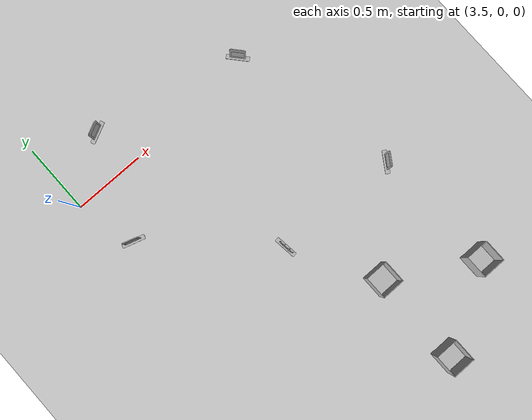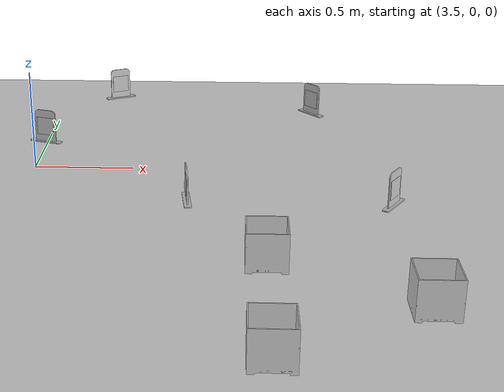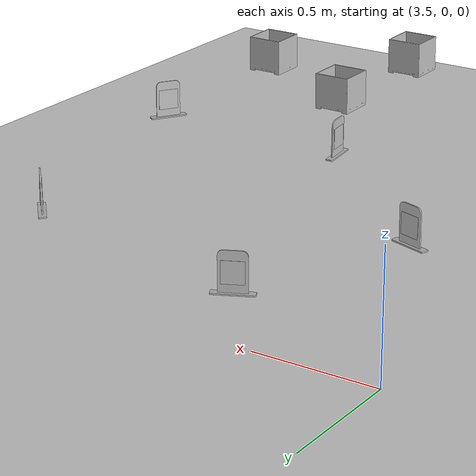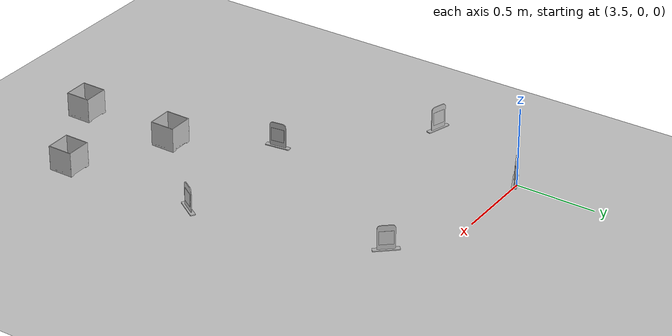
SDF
<sdf version="1.7">
 <world name="trc2k25_arena">
  <model name="ground_plane">
   <static>1</static>
   <link name="link">
    <collision name="collision">
     <geometry><plane><normal>0 0 1</normal><size>100 100</size></plane></geometry>
     <surface><friction><ode><mu>100</mu><mu2>50</mu2></ode></friction></surface>
    </collision>
    <visual name="visual">
     <cast_shadows>0</cast_shadows>
     <geometry><plane><normal>0 0 1</normal><size>100 100</size></plane></geometry>
     <material>
      <script><uri>file://media/materials/scripts/gazebo.material</uri><name>Gazebo/Grey</name></script>
     </material>
    </visual>
   </link>
  </model>
  <model name="pancarte_qr_code_erevan">
   <pose>5.13998 -1.1034 0.345 0 -0 0.99254</pose>
   <model name="pancarte">
    <static>1</static>
    <link name="link">
     <collision name="collision">
      <pose>0 0.075 0 0 -0 0</pose>
      <geometry><box><size>0.15 0.15 0.03</size></box></geometry>
     </collision>
     <visual name="visual">
      <geometry>
       <mesh><scale>0.001 0.001 0.001</scale><uri>model://pancarte/meshes/PANCARTE_QR.stl</uri></mesh>
      </geometry>
     </visual>
    </link>
    <pose>8.8e-05 0.001115 -0.037644 1.55978 -0 0</pose>
   </model>
   <model name="qr_code_zone1Erevan">
    <static>1</static>
    <link name="qr_code_zone1Erevan_link">
     <pose>0 0 0.001 0 -0 1.5708</pose>
     <visual name="visual_qr_code_zone1Erevan">
      <cast_shadows>0</cast_shadows>
      <geometry><box><size>0.08 0.08 0.001</size></box></geometry>
      <material>
       <script>
        <uri>model://qr_code_zone1Erevan/materials/scripts</uri>
        <uri>model://qr_code_zone1Erevan/materials/textures</uri>
        <name>qr_code_zone1Erevan/qr_code_zone1Erevan</name>
       </script>
      </material>
     </visual>
    </link>
    <pose>-8.8e-05 -0.001115 0.037644 1.55615 -0 0</pose>
   </model>
   <model name="qr_code_zone1Erevan_0">
    <static>1</static>
    <link name="qr_code_zone1Erevan_link">
     <pose>0 0 0.001 0 -0 1.5708</pose>
     <visual name="visual_qr_code_zone1Erevan">
      <cast_shadows>0</cast_shadows>
      <geometry><box><size>0.08 0.08 0.001</size></box></geometry>
      <material>
       <script>
        <uri>model://qr_code_zone1Erevan/materials/scripts</uri>
        <uri>model://qr_code_zone1Erevan/materials/textures</uri>
        <name>qr_code_zone1Erevan/qr_code_zone1Erevan</name>
       </script>
      </material>
     </visual>
    </link>
    <pose>-8.8e-05 0.0072 0.037644 -1.58544 0.001593 3.14159</pose>
   </model>
   <static>0</static>
  </model>
  <model name="pancarte_qr_code_haie-vive">
   <pose>4.32803 -1.08436 0.345 0 -0 1.68818</pose>
   <model name="pancarte">
    <static>1</static>
    <link name="link">
     <collision name="collision">
      <pose>0 0.075 0 0 -0 0</pose>
      <geometry><box><size>0.15 0.15 0.03</size></box></geometry>
     </collision>
     <visual name="visual">
      <geometry>
       <mesh><scale>0.001 0.001 0.001</scale><uri>model://pancarte/meshes/PANCARTE_QR.stl</uri></mesh>
      </geometry>
     </visual>
    </link>
    <pose>8.8e-05 0.001115 -0.037644 1.55978 -0 0</pose>
   </model>
   <model name="qr_code_zone1Haie-Vive">
    <static>1</static>
    <link name="qr_code_zone1Haie-Vive_link">
     <pose>0 0 0.001 0 -0 1.5708</pose>
     <visual name="visual_qr_code_zone1Haie-Vive">
      <cast_shadows>0</cast_shadows>
      <geometry><box><size>0.08 0.08 0.001</size></box></geometry>
      <material>
       <script>
        <uri>model://qr_code_zone1Haie-Vive/materials/scripts</uri>
        <uri>model://qr_code_zone1Haie-Vive/materials/textures</uri>
        <name>qr_code_zone1Haie-Vive/qr_code_zone1Haie-Vive</name>
       </script>
      </material>
     </visual>
    </link>
    <pose>-8.8e-05 -0.001115 0.037644 1.55615 -0 0</pose>
   </model>
   <model name="qr_code_zone1Haie-Vive_0">
    <static>1</static>
    <link name="qr_code_zone1Haie-Vive_link">
     <pose>0 0 0.001 0 -0 1.5708</pose>
     <visual name="visual_qr_code_zone1Haie-Vive">
      <cast_shadows>0</cast_shadows>
      <geometry><box><size>0.08 0.08 0.001</size></box></geometry>
      <material>
       <script>
        <uri>model://qr_code_zone1Haie-Vive/materials/scripts</uri>
        <uri>model://qr_code_zone1Haie-Vive/materials/textures</uri>
        <name>qr_code_zone1Haie-Vive/qr_code_zone1Haie-Vive</name>
       </script>
      </material>
     </visual>
    </link>
    <pose>-8.8e-05 0.0072 0.037644 -1.58544 0.001593 3.14159</pose>
   </model>
   <static>0</static>
  </model>
  <model name="pancarte_qr_code_zone1Tampouy">
   <pose>4.88696 -0.005742 0.345 0 0 -0.849323</pose>
   <model name="pancarte">
    <static>1</static>
    <link name="link">
     <collision name="collision">
      <pose>0 0.075 0 0 -0 0</pose>
      <geometry><box><size>0.15 0.15 0.03</size></box></geometry>
     </collision>
     <visual name="visual">
      <geometry>
       <mesh><scale>0.001 0.001 0.001</scale><uri>model://pancarte/meshes/PANCARTE_QR.stl</uri></mesh>
      </geometry>
     </visual>
    </link>
    <pose>8.8e-05 0.001115 -0.037644 1.55978 -0 0</pose>
   </model>
   <model name="qr_code_zone1Tampouy">
    <static>1</static>
    <link name="qr_code_zone1Tampouy_link">
     <pose>0 0 0.001 0 -0 1.5708</pose>
     <visual name="visual_qr_code_zone1Tampouy">
      <cast_shadows>0</cast_shadows>
      <geometry><box><size>0.08 0.08 0.001</size></box></geometry>
      <material>
       <script>
        <uri>model://qr_code_zone1Tampouy/materials/scripts</uri>
        <uri>model://qr_code_zone1Tampouy/materials/textures</uri>
        <name>qr_code_zone1Tampouy/qr_code_zone1Tampouy</name>
       </script>
      </material>
     </visual>
    </link>
    <pose>-8.8e-05 -0.001115 0.037644 1.55615 -0 0</pose>
   </model>
   <model name="qr_code_zone1Tampouy_0">
    <static>1</static>
    <link name="qr_code_zone1Tampouy_link">
     <pose>0 0 0.001 0 -0 1.5708</pose>
     <visual name="visual_qr_code_zone1Tampouy">
      <cast_shadows>0</cast_shadows>
      <geometry><box><size>0.08 0.08 0.001</size></box></geometry>
      <material>
       <script>
        <uri>model://qr_code_zone1Tampouy/materials/scripts</uri>
        <uri>model://qr_code_zone1Tampouy/materials/textures</uri>
        <name>qr_code_zone1Tampouy/qr_code_zone1Tampouy</name>
       </script>
      </material>
     </visual>
    </link>
    <pose>-8.8e-05 0.0072 0.037644 -1.58544 0.001593 3.14159</pose>
   </model>
   <static>0</static>
  </model>
  <model name="pancarte_qr_code_zone3MoroccoMall">
   <pose>3.92436 0.213736 0.345 0 -0 0.443807</pose>
   <model name="pancarte">
    <static>1</static>
    <link name="link">
     <collision name="collision">
      <pose>0 0.075 0 0 -0 0</pose>
      <geometry><box><size>0.15 0.15 0.03</size></box></geometry>
     </collision>
     <visual name="visual">
      <geometry>
       <mesh><scale>0.001 0.001 0.001</scale><uri>model://pancarte/meshes/PANCARTE_QR.stl</uri></mesh>
      </geometry>
     </visual>
    </link>
    <pose>8.8e-05 0.001115 -0.037644 1.55978 -0 0</pose>
   </model>
   <model name="qr_code_zone3MoroccoMall">
    <static>1</static>
    <link name="qr_code_zone3MoroccoMall_link">
     <pose>0 0 0.001 0 -0 1.5708</pose>
     <visual name="visual_qr_code_zone3MoroccoMall">
      <cast_shadows>0</cast_shadows>
      <geometry><box><size>0.08 0.08 0.001</size></box></geometry>
      <material>
       <script>
        <uri>model://qr_code_zone3MoroccoMall/materials/scripts</uri>
        <uri>model://qr_code_zone3MoroccoMall/materials/textures</uri>
        <name>qr_code_zone3MoroccoMall/qr_code_zone3MoroccoMall</name>
       </script>
      </material>
     </visual>
    </link>
    <pose>-8.8e-05 -0.001115 0.037644 1.55615 -0 0</pose>
   </model>
   <model name="qr_code_zone3MoroccoMall_0">
    <static>1</static>
    <link name="qr_code_zone3MoroccoMall_link">
     <pose>0 0 0.001 0 -0 1.5708</pose>
     <visual name="visual_qr_code_zone3MoroccoMall">
      <cast_shadows>0</cast_shadows>
      <geometry><box><size>0.08 0.08 0.001</size></box></geometry>
      <material>
       <script>
        <uri>model://qr_code_zone3MoroccoMall/materials/scripts</uri>
        <uri>model://qr_code_zone3MoroccoMall/materials/textures</uri>
        <name>qr_code_zone3MoroccoMall/qr_code_zone3MoroccoMall</name>
       </script>
      </material>
     </visual>
    </link>
    <pose>-8.8e-05 0.0072 0.037644 -1.58544 0.001593 3.14159</pose>
   </model>
   <static>0</static>
  </model>
  <model name="pancarte_qr_code_zone3Toamasina">
   <pose>3.65297 -0.444429 0.345 0 -0 -0.297475</pose>
   <model name="pancarte">
    <static>1</static>
    <link name="link">
     <collision name="collision">
      <pose>0 0.075 0 0 -0 0</pose>
      <geometry><box><size>0.15 0.15 0.03</size></box></geometry>
     </collision>
     <visual name="visual">
      <geometry>
       <mesh><scale>0.001 0.001 0.001</scale><uri>model://pancarte/meshes/PANCARTE_QR.stl</uri></mesh>
      </geometry>
     </visual>
    </link>
    <pose>8.8e-05 0.001115 -0.037644 1.55978 -0 0</pose>
   </model>
   <model name="qr_code_zone3Toamasina">
    <static>1</static>
    <link name="qr_code_zone3Toamasina_link">
     <pose>0 0 0.001 0 -0 1.5708</pose>
     <visual name="visual_qr_code_zone3Toamasina">
      <cast_shadows>0</cast_shadows>
      <geometry><box><size>0.08 0.08 0.001</size></box></geometry>
      <material>
       <script>
        <uri>model://qr_code_zone3Toamasina/materials/scripts</uri>
        <uri>model://qr_code_zone3Toamasina/materials/textures</uri>
        <name>qr_code_zone3Toamasina/qr_code_zone3Toamasina</name>
       </script>
      </material>
     </visual>
    </link>
    <pose>-8.8e-05 -0.001115 0.037644 1.55615 -0 0</pose>
   </model>
   <model name="qr_code_zone3Toamasina_0">
    <static>1</static>
    <link name="qr_code_zone3Toamasina_link">
     <pose>0 0 0.001 0 -0 1.5708</pose>
     <visual name="visual_qr_code_zone3Toamasina">
      <cast_shadows>0</cast_shadows>
      <geometry><box><size>0.08 0.08 0.001</size></box></geometry>
      <material>
       <script>
        <uri>model://qr_code_zone3Toamasina/materials/scripts</uri>
        <uri>model://qr_code_zone3Toamasina/materials/textures</uri>
        <name>qr_code_zone3Toamasina/qr_code_zone3Toamasina</name>
       </script>
      </material>
     </visual>
    </link>
    <pose>-8.8e-05 0.0072 0.037644 -1.58544 0.001593 3.14159</pose>
   </model>
   <static>0</static>
  </model>
  <model name="corbeille">
   <static>1</static>
   <pose>5.15451 -1.91158 0.305 0 -0 0</pose>
   <link name="link">
    <collision name="collision">
     <pose>0 0 0.075 0 -0 0</pose>
     <geometry><box><size>0.15 0.15 0.15</size></box></geometry>
    </collision>
    <visual name="visual">
     <pose>0 0 0.01 1.56319 -0 0</pose>
     <geometry>
      <mesh><scale>0.001 0.001 0.001</scale><uri>model://corbeille/meshes/CORBEILLE.stl</uri></mesh>
     </geometry>
    </visual>
   </link>
  </model>
  <model name="corbeille_0">
   <static>1</static>
   <pose>4.62923 -1.61056 0.305 0 -0 0</pose>
   <link name="link">
    <collision name="collision">
     <pose>0 0 0.075 0 -0 0</pose>
     <geometry><box><size>0.15 0.15 0.15</size></box></geometry>
    </collision>
    <visual name="visual">
     <pose>0 0 0.01 1.56319 -0 0</pose>
     <geometry>
      <mesh><scale>0.001 0.001 0.001</scale><uri>model://corbeille/meshes/CORBEILLE.stl</uri></mesh>
     </geometry>
    </visual>
   </link>
  </model>
  <model name="corbeille_1">
   <static>1</static>
   <pose>4.62975 -2.21552 0.305 0 -0 0</pose>
   <link name="link">
    <collision name="collision">
     <pose>0 0 0.075 0 -0 0</pose>
     <geometry><box><size>0.15 0.15 0.15</size></box></geometry>
    </collision>
    <visual name="visual">
     <pose>0 0 0.01 1.56319 -0 0</pose>
     <geometry>
      <mesh><scale>0.001 0.001 0.001</scale><uri>model://corbeille/meshes/CORBEILLE.stl</uri></mesh>
     </geometry>
    </visual>
   </link>
  </model>
 </world>
</sdf>
